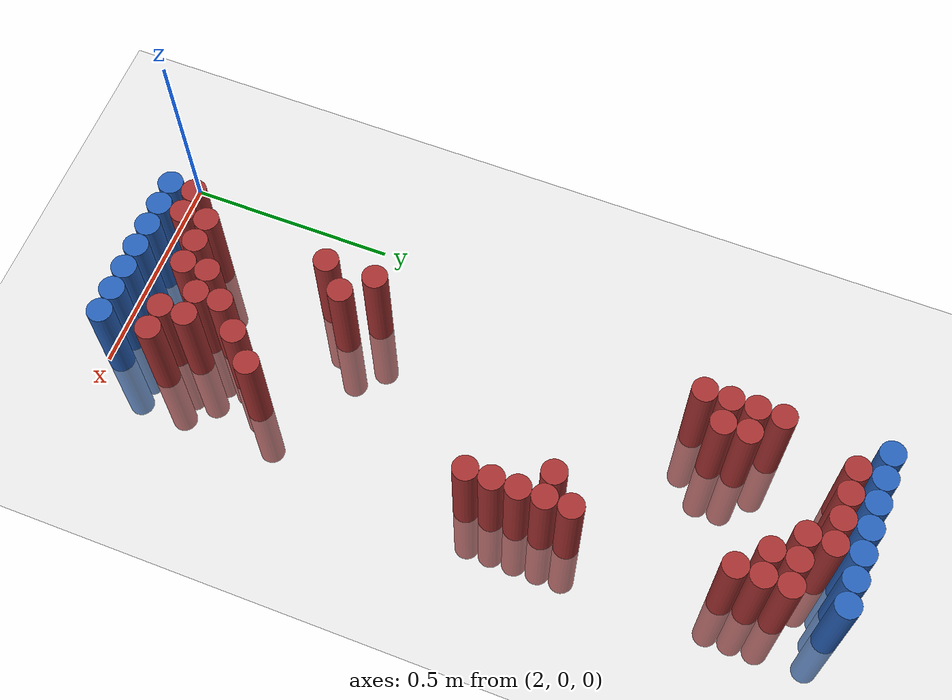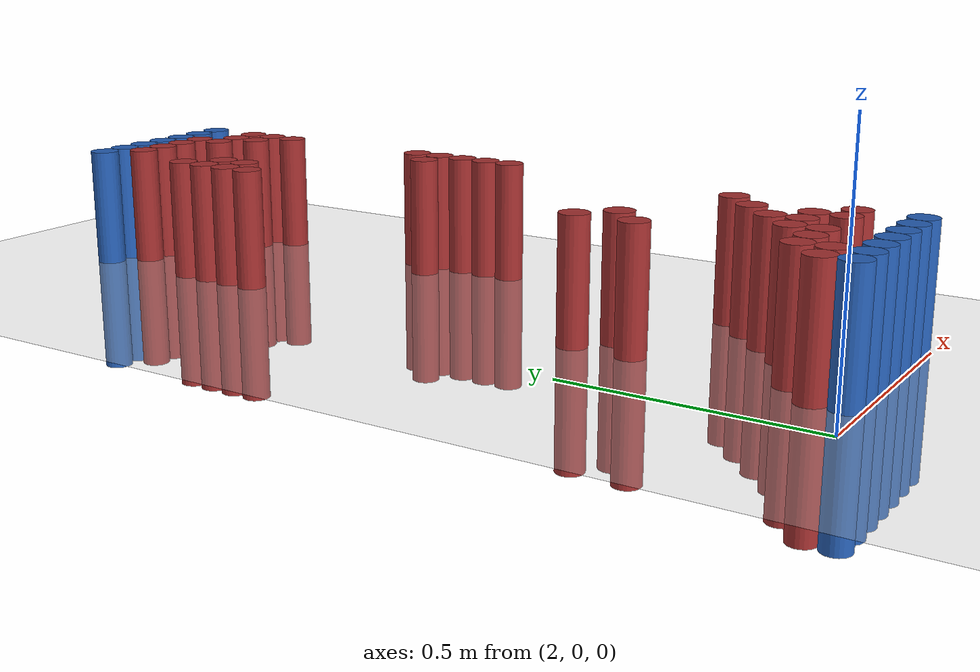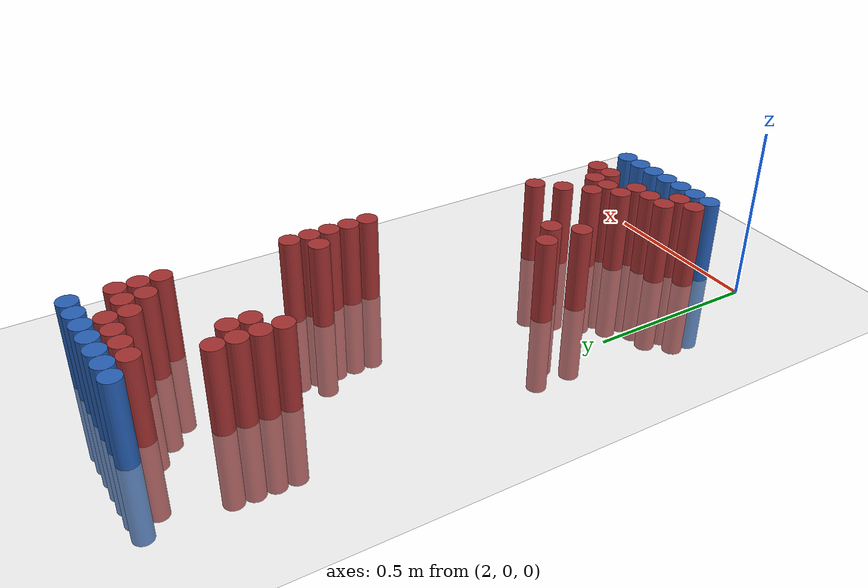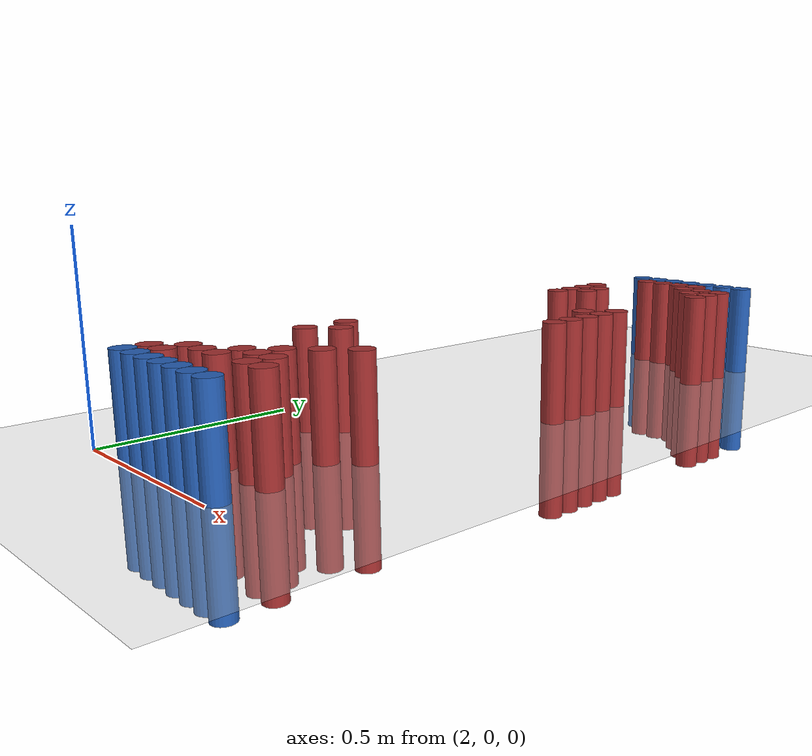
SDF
<sdf version="1.6">
 <world name="default">
  <model name="ground_plane">
   <static>1</static>
   <link name="link">
    <collision name="collision">
     <geometry><plane><normal>0 0 1</normal><size>100 100</size></plane></geometry>
     <surface><friction><ode><mu>100</mu><mu2>50</mu2></ode></friction></surface>
    </collision>
    <visual name="visual">
     <cast_shadows>0</cast_shadows>
     <geometry><plane><normal>0 0 1</normal><size>100 100</size></plane></geometry>
     <material>
      <script><uri>file://media/materials/scripts/gazebo.material</uri><name>Gazebo/Grey</name></script>
     </material>
    </visual>
   </link>
  </model>
  <model name="unit_cylinder_97">
   <static>1</static>
   <pose>2.190000 1.770000 0.000000 0.000000 0.000000 0.000000</pose>
   <link name="link">
    <inertial>
     <mass>1</mass>
     <inertia><ixx>0.145833</ixx><ixy>0</ixy><ixz>0</ixz><iyy>0.145833</iyy><iyz>0</iyz><izz>0.125</izz></inertia>
    </inertial>
    <collision name="collision">
     <geometry><cylinder><radius>0.030000</radius><length>0.5</length></cylinder></geometry>
    </collision>
    <visual name="visual">
     <geometry><cylinder><radius>0.030000</radius><length>0.5</length></cylinder></geometry>
     <material>
      <ambient>0.152000 0.379000 0.720000 1</ambient>
      <diffuse>0.152000 0.379000 0.720000 1</diffuse>
     </material>
     <material>
      <script><name>Gazebo/Grey</name><uri>file://media/materials/scripts/gazebo.material</uri></script>
     </material>
    </visual>
   </link>
  </model>
  <model name="unit_cylinder_98">
   <static>1</static>
   <pose>2.250000 1.770000 0.000000 0.000000 0.000000 0.000000</pose>
   <link name="link">
    <inertial>
     <mass>1</mass>
     <inertia><ixx>0.145833</ixx><ixy>0</ixy><ixz>0</ixz><iyy>0.145833</iyy><iyz>0</iyz><izz>0.125</izz></inertia>
    </inertial>
    <collision name="collision">
     <geometry><cylinder><radius>0.030000</radius><length>0.5</length></cylinder></geometry>
    </collision>
    <visual name="visual">
     <geometry><cylinder><radius>0.030000</radius><length>0.5</length></cylinder></geometry>
     <material>
      <ambient>0.152000 0.379000 0.720000 1</ambient>
      <diffuse>0.152000 0.379000 0.720000 1</diffuse>
     </material>
     <material>
      <script><name>Gazebo/Grey</name><uri>file://media/materials/scripts/gazebo.material</uri></script>
     </material>
    </visual>
   </link>
  </model>
  <model name="unit_cylinder_99">
   <static>1</static>
   <pose>2.310000 1.770000 0.000000 0.000000 0.000000 0.000000</pose>
   <link name="link">
    <inertial>
     <mass>1</mass>
     <inertia><ixx>0.145833</ixx><ixy>0</ixy><ixz>0</ixz><iyy>0.145833</iyy><iyz>0</iyz><izz>0.125</izz></inertia>
    </inertial>
    <collision name="collision">
     <geometry><cylinder><radius>0.030000</radius><length>0.5</length></cylinder></geometry>
    </collision>
    <visual name="visual">
     <geometry><cylinder><radius>0.030000</radius><length>0.5</length></cylinder></geometry>
     <material>
      <ambient>0.152000 0.379000 0.720000 1</ambient>
      <diffuse>0.152000 0.379000 0.720000 1</diffuse>
     </material>
     <material>
      <script><name>Gazebo/Grey</name><uri>file://media/materials/scripts/gazebo.material</uri></script>
     </material>
    </visual>
   </link>
  </model>
  <model name="unit_cylinder_100">
   <static>1</static>
   <pose>2.370000 1.770000 0.000000 0.000000 0.000000 0.000000</pose>
   <link name="link">
    <inertial>
     <mass>1</mass>
     <inertia><ixx>0.145833</ixx><ixy>0</ixy><ixz>0</ixz><iyy>0.145833</iyy><iyz>0</iyz><izz>0.125</izz></inertia>
    </inertial>
    <collision name="collision">
     <geometry><cylinder><radius>0.030000</radius><length>0.5</length></cylinder></geometry>
    </collision>
    <visual name="visual">
     <geometry><cylinder><radius>0.030000</radius><length>0.5</length></cylinder></geometry>
     <material>
      <ambient>0.152000 0.379000 0.720000 1</ambient>
      <diffuse>0.152000 0.379000 0.720000 1</diffuse>
     </material>
     <material>
      <script><name>Gazebo/Grey</name><uri>file://media/materials/scripts/gazebo.material</uri></script>
     </material>
    </visual>
   </link>
  </model>
  <model name="unit_cylinder_101">
   <static>1</static>
   <pose>2.430000 1.770000 0.000000 0.000000 0.000000 0.000000</pose>
   <link name="link">
    <inertial>
     <mass>1</mass>
     <inertia><ixx>0.145833</ixx><ixy>0</ixy><ixz>0</ixz><iyy>0.145833</iyy><iyz>0</iyz><izz>0.125</izz></inertia>
    </inertial>
    <collision name="collision">
     <geometry><cylinder><radius>0.030000</radius><length>0.5</length></cylinder></geometry>
    </collision>
    <visual name="visual">
     <geometry><cylinder><radius>0.030000</radius><length>0.5</length></cylinder></geometry>
     <material>
      <ambient>0.152000 0.379000 0.720000 1</ambient>
      <diffuse>0.152000 0.379000 0.720000 1</diffuse>
     </material>
     <material>
      <script><name>Gazebo/Grey</name><uri>file://media/materials/scripts/gazebo.material</uri></script>
     </material>
    </visual>
   </link>
  </model>
  <model name="unit_cylinder_102">
   <static>1</static>
   <pose>2.490000 1.770000 0.000000 0.000000 0.000000 0.000000</pose>
   <link name="link">
    <inertial>
     <mass>1</mass>
     <inertia><ixx>0.145833</ixx><ixy>0</ixy><ixz>0</ixz><iyy>0.145833</iyy><iyz>0</iyz><izz>0.125</izz></inertia>
    </inertial>
    <collision name="collision">
     <geometry><cylinder><radius>0.030000</radius><length>0.5</length></cylinder></geometry>
    </collision>
    <visual name="visual">
     <geometry><cylinder><radius>0.030000</radius><length>0.5</length></cylinder></geometry>
     <material>
      <ambient>0.152000 0.379000 0.720000 1</ambient>
      <diffuse>0.152000 0.379000 0.720000 1</diffuse>
     </material>
     <material>
      <script><name>Gazebo/Grey</name><uri>file://media/materials/scripts/gazebo.material</uri></script>
     </material>
    </visual>
   </link>
  </model>
  <model name="unit_cylinder_103">
   <static>1</static>
   <pose>2.550000 1.770000 0.000000 0.000000 0.000000 0.000000</pose>
   <link name="link">
    <inertial>
     <mass>1</mass>
     <inertia><ixx>0.145833</ixx><ixy>0</ixy><ixz>0</ixz><iyy>0.145833</iyy><iyz>0</iyz><izz>0.125</izz></inertia>
    </inertial>
    <collision name="collision">
     <geometry><cylinder><radius>0.030000</radius><length>0.5</length></cylinder></geometry>
    </collision>
    <visual name="visual">
     <geometry><cylinder><radius>0.030000</radius><length>0.5</length></cylinder></geometry>
     <material>
      <ambient>0.152000 0.379000 0.720000 1</ambient>
      <diffuse>0.152000 0.379000 0.720000 1</diffuse>
     </material>
     <material>
      <script><name>Gazebo/Grey</name><uri>file://media/materials/scripts/gazebo.material</uri></script>
     </material>
    </visual>
   </link>
  </model>
  <model name="unit_cylinder_125">
   <static>1</static>
   <pose>2.250000 1.710000 0.000000 0.000000 0.000000 0.000000</pose>
   <link name="link">
    <inertial>
     <mass>1</mass>
     <inertia><ixx>0.145833</ixx><ixy>0</ixy><ixz>0</ixz><iyy>0.145833</iyy><iyz>0</iyz><izz>0.125</izz></inertia>
    </inertial>
    <collision name="collision">
     <geometry><cylinder><radius>0.030000</radius><length>0.5</length></cylinder></geometry>
    </collision>
    <visual name="visual">
     <geometry><cylinder><radius>0.030000</radius><length>0.5</length></cylinder></geometry>
     <material>
      <ambient>0.648000 0.192000 0.192000 1</ambient>
      <diffuse>0.648000 0.192000 0.192000 1</diffuse>
     </material>
     <material>
      <script><name>Gazebo/Grey</name><uri>file://media/materials/scripts/gazebo.material</uri></script>
     </material>
    </visual>
   </link>
  </model>
  <model name="unit_cylinder_126">
   <static>1</static>
   <pose>2.310000 1.710000 0.000000 0.000000 0.000000 0.000000</pose>
   <link name="link">
    <inertial>
     <mass>1</mass>
     <inertia><ixx>0.145833</ixx><ixy>0</ixy><ixz>0</ixz><iyy>0.145833</iyy><iyz>0</iyz><izz>0.125</izz></inertia>
    </inertial>
    <collision name="collision">
     <geometry><cylinder><radius>0.030000</radius><length>0.5</length></cylinder></geometry>
    </collision>
    <visual name="visual">
     <geometry><cylinder><radius>0.030000</radius><length>0.5</length></cylinder></geometry>
     <material>
      <ambient>0.648000 0.192000 0.192000 1</ambient>
      <diffuse>0.648000 0.192000 0.192000 1</diffuse>
     </material>
     <material>
      <script><name>Gazebo/Grey</name><uri>file://media/materials/scripts/gazebo.material</uri></script>
     </material>
    </visual>
   </link>
  </model>
  <model name="unit_cylinder_127">
   <static>1</static>
   <pose>2.370000 1.710000 0.000000 0.000000 0.000000 0.000000</pose>
   <link name="link">
    <inertial>
     <mass>1</mass>
     <inertia><ixx>0.145833</ixx><ixy>0</ixy><ixz>0</ixz><iyy>0.145833</iyy><iyz>0</iyz><izz>0.125</izz></inertia>
    </inertial>
    <collision name="collision">
     <geometry><cylinder><radius>0.030000</radius><length>0.5</length></cylinder></geometry>
    </collision>
    <visual name="visual">
     <geometry><cylinder><radius>0.030000</radius><length>0.5</length></cylinder></geometry>
     <material>
      <ambient>0.648000 0.192000 0.192000 1</ambient>
      <diffuse>0.648000 0.192000 0.192000 1</diffuse>
     </material>
     <material>
      <script><name>Gazebo/Grey</name><uri>file://media/materials/scripts/gazebo.material</uri></script>
     </material>
    </visual>
   </link>
  </model>
  <model name="unit_cylinder_128">
   <static>1</static>
   <pose>2.430000 1.710000 0.000000 0.000000 0.000000 0.000000</pose>
   <link name="link">
    <inertial>
     <mass>1</mass>
     <inertia><ixx>0.145833</ixx><ixy>0</ixy><ixz>0</ixz><iyy>0.145833</iyy><iyz>0</iyz><izz>0.125</izz></inertia>
    </inertial>
    <collision name="collision">
     <geometry><cylinder><radius>0.030000</radius><length>0.5</length></cylinder></geometry>
    </collision>
    <visual name="visual">
     <geometry><cylinder><radius>0.030000</radius><length>0.5</length></cylinder></geometry>
     <material>
      <ambient>0.648000 0.192000 0.192000 1</ambient>
      <diffuse>0.648000 0.192000 0.192000 1</diffuse>
     </material>
     <material>
      <script><name>Gazebo/Grey</name><uri>file://media/materials/scripts/gazebo.material</uri></script>
     </material>
    </visual>
   </link>
  </model>
  <model name="unit_cylinder_138">
   <static>1</static>
   <pose>2.430000 1.650000 0.000000 0.000000 0.000000 0.000000</pose>
   <link name="link">
    <inertial>
     <mass>1</mass>
     <inertia><ixx>0.145833</ixx><ixy>0</ixy><ixz>0</ixz><iyy>0.145833</iyy><iyz>0</iyz><izz>0.125</izz></inertia>
    </inertial>
    <collision name="collision">
     <geometry><cylinder><radius>0.030000</radius><length>0.5</length></cylinder></geometry>
    </collision>
    <visual name="visual">
     <geometry><cylinder><radius>0.030000</radius><length>0.5</length></cylinder></geometry>
     <material>
      <ambient>0.648000 0.192000 0.192000 1</ambient>
      <diffuse>0.648000 0.192000 0.192000 1</diffuse>
     </material>
     <material>
      <script><name>Gazebo/Grey</name><uri>file://media/materials/scripts/gazebo.material</uri></script>
     </material>
    </visual>
   </link>
  </model>
  <model name="unit_cylinder_139">
   <static>1</static>
   <pose>2.490000 1.650000 0.000000 0.000000 0.000000 0.000000</pose>
   <link name="link">
    <inertial>
     <mass>1</mass>
     <inertia><ixx>0.145833</ixx><ixy>0</ixy><ixz>0</ixz><iyy>0.145833</iyy><iyz>0</iyz><izz>0.125</izz></inertia>
    </inertial>
    <collision name="collision">
     <geometry><cylinder><radius>0.030000</radius><length>0.5</length></cylinder></geometry>
    </collision>
    <visual name="visual">
     <geometry><cylinder><radius>0.030000</radius><length>0.5</length></cylinder></geometry>
     <material>
      <ambient>0.648000 0.192000 0.192000 1</ambient>
      <diffuse>0.648000 0.192000 0.192000 1</diffuse>
     </material>
     <material>
      <script><name>Gazebo/Grey</name><uri>file://media/materials/scripts/gazebo.material</uri></script>
     </material>
    </visual>
   </link>
  </model>
  <model name="unit_cylinder_140">
   <static>1</static>
   <pose>2.550000 1.650000 0.000000 0.000000 0.000000 0.000000</pose>
   <link name="link">
    <inertial>
     <mass>1</mass>
     <inertia><ixx>0.145833</ixx><ixy>0</ixy><ixz>0</ixz><iyy>0.145833</iyy><iyz>0</iyz><izz>0.125</izz></inertia>
    </inertial>
    <collision name="collision">
     <geometry><cylinder><radius>0.030000</radius><length>0.5</length></cylinder></geometry>
    </collision>
    <visual name="visual">
     <geometry><cylinder><radius>0.030000</radius><length>0.5</length></cylinder></geometry>
     <material>
      <ambient>0.648000 0.192000 0.192000 1</ambient>
      <diffuse>0.648000 0.192000 0.192000 1</diffuse>
     </material>
     <material>
      <script><name>Gazebo/Grey</name><uri>file://media/materials/scripts/gazebo.material</uri></script>
     </material>
    </visual>
   </link>
  </model>
  <model name="unit_cylinder_145">
   <static>1</static>
   <pose>2.490000 1.590000 0.000000 0.000000 0.000000 0.000000</pose>
   <link name="link">
    <inertial>
     <mass>1</mass>
     <inertia><ixx>0.145833</ixx><ixy>0</ixy><ixz>0</ixz><iyy>0.145833</iyy><iyz>0</iyz><izz>0.125</izz></inertia>
    </inertial>
    <collision name="collision">
     <geometry><cylinder><radius>0.030000</radius><length>0.5</length></cylinder></geometry>
    </collision>
    <visual name="visual">
     <geometry><cylinder><radius>0.030000</radius><length>0.5</length></cylinder></geometry>
     <material>
      <ambient>0.648000 0.192000 0.192000 1</ambient>
      <diffuse>0.648000 0.192000 0.192000 1</diffuse>
     </material>
     <material>
      <script><name>Gazebo/Grey</name><uri>file://media/materials/scripts/gazebo.material</uri></script>
     </material>
    </visual>
   </link>
  </model>
  <model name="unit_cylinder_146">
   <static>1</static>
   <pose>2.550000 1.590000 0.000000 0.000000 0.000000 0.000000</pose>
   <link name="link">
    <inertial>
     <mass>1</mass>
     <inertia><ixx>0.145833</ixx><ixy>0</ixy><ixz>0</ixz><iyy>0.145833</iyy><iyz>0</iyz><izz>0.125</izz></inertia>
    </inertial>
    <collision name="collision">
     <geometry><cylinder><radius>0.030000</radius><length>0.5</length></cylinder></geometry>
    </collision>
    <visual name="visual">
     <geometry><cylinder><radius>0.030000</radius><length>0.5</length></cylinder></geometry>
     <material>
      <ambient>0.648000 0.192000 0.192000 1</ambient>
      <diffuse>0.648000 0.192000 0.192000 1</diffuse>
     </material>
     <material>
      <script><name>Gazebo/Grey</name><uri>file://media/materials/scripts/gazebo.material</uri></script>
     </material>
    </visual>
   </link>
  </model>
  <model name="unit_cylinder_151">
   <static>1</static>
   <pose>2.190000 1.530000 0.000000 0.000000 0.000000 0.000000</pose>
   <link name="link">
    <inertial>
     <mass>1</mass>
     <inertia><ixx>0.145833</ixx><ixy>0</ixy><ixz>0</ixz><iyy>0.145833</iyy><iyz>0</iyz><izz>0.125</izz></inertia>
    </inertial>
    <collision name="collision">
     <geometry><cylinder><radius>0.030000</radius><length>0.5</length></cylinder></geometry>
    </collision>
    <visual name="visual">
     <geometry><cylinder><radius>0.030000</radius><length>0.5</length></cylinder></geometry>
     <material>
      <ambient>0.648000 0.192000 0.192000 1</ambient>
      <diffuse>0.648000 0.192000 0.192000 1</diffuse>
     </material>
     <material>
      <script><name>Gazebo/Grey</name><uri>file://media/materials/scripts/gazebo.material</uri></script>
     </material>
    </visual>
   </link>
  </model>
  <model name="unit_cylinder_152">
   <static>1</static>
   <pose>2.550000 1.530000 0.000000 0.000000 0.000000 0.000000</pose>
   <link name="link">
    <inertial>
     <mass>1</mass>
     <inertia><ixx>0.145833</ixx><ixy>0</ixy><ixz>0</ixz><iyy>0.145833</iyy><iyz>0</iyz><izz>0.125</izz></inertia>
    </inertial>
    <collision name="collision">
     <geometry><cylinder><radius>0.030000</radius><length>0.5</length></cylinder></geometry>
    </collision>
    <visual name="visual">
     <geometry><cylinder><radius>0.030000</radius><length>0.5</length></cylinder></geometry>
     <material>
      <ambient>0.648000 0.192000 0.192000 1</ambient>
      <diffuse>0.648000 0.192000 0.192000 1</diffuse>
     </material>
     <material>
      <script><name>Gazebo/Grey</name><uri>file://media/materials/scripts/gazebo.material</uri></script>
     </material>
    </visual>
   </link>
  </model>
  <model name="unit_cylinder_159">
   <static>1</static>
   <pose>2.190000 1.470000 0.000000 0.000000 0.000000 0.000000</pose>
   <link name="link">
    <inertial>
     <mass>1</mass>
     <inertia><ixx>0.145833</ixx><ixy>0</ixy><ixz>0</ixz><iyy>0.145833</iyy><iyz>0</iyz><izz>0.125</izz></inertia>
    </inertial>
    <collision name="collision">
     <geometry><cylinder><radius>0.030000</radius><length>0.5</length></cylinder></geometry>
    </collision>
    <visual name="visual">
     <geometry><cylinder><radius>0.030000</radius><length>0.5</length></cylinder></geometry>
     <material>
      <ambient>0.648000 0.192000 0.192000 1</ambient>
      <diffuse>0.648000 0.192000 0.192000 1</diffuse>
     </material>
     <material>
      <script><name>Gazebo/Grey</name><uri>file://media/materials/scripts/gazebo.material</uri></script>
     </material>
    </visual>
   </link>
  </model>
  <model name="unit_cylinder_160">
   <static>1</static>
   <pose>2.250000 1.470000 0.000000 0.000000 0.000000 0.000000</pose>
   <link name="link">
    <inertial>
     <mass>1</mass>
     <inertia><ixx>0.145833</ixx><ixy>0</ixy><ixz>0</ixz><iyy>0.145833</iyy><iyz>0</iyz><izz>0.125</izz></inertia>
    </inertial>
    <collision name="collision">
     <geometry><cylinder><radius>0.030000</radius><length>0.5</length></cylinder></geometry>
    </collision>
    <visual name="visual">
     <geometry><cylinder><radius>0.030000</radius><length>0.5</length></cylinder></geometry>
     <material>
      <ambient>0.648000 0.192000 0.192000 1</ambient>
      <diffuse>0.648000 0.192000 0.192000 1</diffuse>
     </material>
     <material>
      <script><name>Gazebo/Grey</name><uri>file://media/materials/scripts/gazebo.material</uri></script>
     </material>
    </visual>
   </link>
  </model>
  <model name="unit_cylinder_167">
   <static>1</static>
   <pose>2.190000 1.410000 0.000000 0.000000 0.000000 0.000000</pose>
   <link name="link">
    <inertial>
     <mass>1</mass>
     <inertia><ixx>0.145833</ixx><ixy>0</ixy><ixz>0</ixz><iyy>0.145833</iyy><iyz>0</iyz><izz>0.125</izz></inertia>
    </inertial>
    <collision name="collision">
     <geometry><cylinder><radius>0.030000</radius><length>0.5</length></cylinder></geometry>
    </collision>
    <visual name="visual">
     <geometry><cylinder><radius>0.030000</radius><length>0.5</length></cylinder></geometry>
     <material>
      <ambient>0.648000 0.192000 0.192000 1</ambient>
      <diffuse>0.648000 0.192000 0.192000 1</diffuse>
     </material>
     <material>
      <script><name>Gazebo/Grey</name><uri>file://media/materials/scripts/gazebo.material</uri></script>
     </material>
    </visual>
   </link>
  </model>
  <model name="unit_cylinder_168">
   <static>1</static>
   <pose>2.250000 1.410000 0.000000 0.000000 0.000000 0.000000</pose>
   <link name="link">
    <inertial>
     <mass>1</mass>
     <inertia><ixx>0.145833</ixx><ixy>0</ixy><ixz>0</ixz><iyy>0.145833</iyy><iyz>0</iyz><izz>0.125</izz></inertia>
    </inertial>
    <collision name="collision">
     <geometry><cylinder><radius>0.030000</radius><length>0.5</length></cylinder></geometry>
    </collision>
    <visual name="visual">
     <geometry><cylinder><radius>0.030000</radius><length>0.5</length></cylinder></geometry>
     <material>
      <ambient>0.648000 0.192000 0.192000 1</ambient>
      <diffuse>0.648000 0.192000 0.192000 1</diffuse>
     </material>
     <material>
      <script><name>Gazebo/Grey</name><uri>file://media/materials/scripts/gazebo.material</uri></script>
     </material>
    </visual>
   </link>
  </model>
  <model name="unit_cylinder_177">
   <static>1</static>
   <pose>2.190000 1.350000 0.000000 0.000000 0.000000 0.000000</pose>
   <link name="link">
    <inertial>
     <mass>1</mass>
     <inertia><ixx>0.145833</ixx><ixy>0</ixy><ixz>0</ixz><iyy>0.145833</iyy><iyz>0</iyz><izz>0.125</izz></inertia>
    </inertial>
    <collision name="collision">
     <geometry><cylinder><radius>0.030000</radius><length>0.5</length></cylinder></geometry>
    </collision>
    <visual name="visual">
     <geometry><cylinder><radius>0.030000</radius><length>0.5</length></cylinder></geometry>
     <material>
      <ambient>0.648000 0.192000 0.192000 1</ambient>
      <diffuse>0.648000 0.192000 0.192000 1</diffuse>
     </material>
     <material>
      <script><name>Gazebo/Grey</name><uri>file://media/materials/scripts/gazebo.material</uri></script>
     </material>
    </visual>
   </link>
  </model>
  <model name="unit_cylinder_199">
   <static>1</static>
   <pose>2.550000 1.170000 0.000000 0.000000 0.000000 0.000000</pose>
   <link name="link">
    <inertial>
     <mass>1</mass>
     <inertia><ixx>0.145833</ixx><ixy>0</ixy><ixz>0</ixz><iyy>0.145833</iyy><iyz>0</iyz><izz>0.125</izz></inertia>
    </inertial>
    <collision name="collision">
     <geometry><cylinder><radius>0.030000</radius><length>0.5</length></cylinder></geometry>
    </collision>
    <visual name="visual">
     <geometry><cylinder><radius>0.030000</radius><length>0.5</length></cylinder></geometry>
     <material>
      <ambient>0.648000 0.192000 0.192000 1</ambient>
      <diffuse>0.648000 0.192000 0.192000 1</diffuse>
     </material>
     <material>
      <script><name>Gazebo/Grey</name><uri>file://media/materials/scripts/gazebo.material</uri></script>
     </material>
    </visual>
   </link>
  </model>
  <model name="unit_cylinder_206">
   <static>1</static>
   <pose>2.490000 1.110000 0.000000 0.000000 0.000000 0.000000</pose>
   <link name="link">
    <inertial>
     <mass>1</mass>
     <inertia><ixx>0.145833</ixx><ixy>0</ixy><ixz>0</ixz><iyy>0.145833</iyy><iyz>0</iyz><izz>0.125</izz></inertia>
    </inertial>
    <collision name="collision">
     <geometry><cylinder><radius>0.030000</radius><length>0.5</length></cylinder></geometry>
    </collision>
    <visual name="visual">
     <geometry><cylinder><radius>0.030000</radius><length>0.5</length></cylinder></geometry>
     <material>
      <ambient>0.648000 0.192000 0.192000 1</ambient>
      <diffuse>0.648000 0.192000 0.192000 1</diffuse>
     </material>
     <material>
      <script><name>Gazebo/Grey</name><uri>file://media/materials/scripts/gazebo.material</uri></script>
     </material>
    </visual>
   </link>
  </model>
  <model name="unit_cylinder_207">
   <static>1</static>
   <pose>2.550000 1.110000 0.000000 0.000000 0.000000 0.000000</pose>
   <link name="link">
    <inertial>
     <mass>1</mass>
     <inertia><ixx>0.145833</ixx><ixy>0</ixy><ixz>0</ixz><iyy>0.145833</iyy><iyz>0</iyz><izz>0.125</izz></inertia>
    </inertial>
    <collision name="collision">
     <geometry><cylinder><radius>0.030000</radius><length>0.5</length></cylinder></geometry>
    </collision>
    <visual name="visual">
     <geometry><cylinder><radius>0.030000</radius><length>0.5</length></cylinder></geometry>
     <material>
      <ambient>0.648000 0.192000 0.192000 1</ambient>
      <diffuse>0.648000 0.192000 0.192000 1</diffuse>
     </material>
     <material>
      <script><name>Gazebo/Grey</name><uri>file://media/materials/scripts/gazebo.material</uri></script>
     </material>
    </visual>
   </link>
  </model>
  <model name="unit_cylinder_210">
   <static>1</static>
   <pose>2.550000 1.050000 0.000000 0.000000 0.000000 0.000000</pose>
   <link name="link">
    <inertial>
     <mass>1</mass>
     <inertia><ixx>0.145833</ixx><ixy>0</ixy><ixz>0</ixz><iyy>0.145833</iyy><iyz>0</iyz><izz>0.125</izz></inertia>
    </inertial>
    <collision name="collision">
     <geometry><cylinder><radius>0.030000</radius><length>0.5</length></cylinder></geometry>
    </collision>
    <visual name="visual">
     <geometry><cylinder><radius>0.030000</radius><length>0.5</length></cylinder></geometry>
     <material>
      <ambient>0.648000 0.192000 0.192000 1</ambient>
      <diffuse>0.648000 0.192000 0.192000 1</diffuse>
     </material>
     <material>
      <script><name>Gazebo/Grey</name><uri>file://media/materials/scripts/gazebo.material</uri></script>
     </material>
    </visual>
   </link>
  </model>
  <model name="unit_cylinder_213">
   <static>1</static>
   <pose>2.550000 0.990000 0.000000 0.000000 0.000000 0.000000</pose>
   <link name="link">
    <inertial>
     <mass>1</mass>
     <inertia><ixx>0.145833</ixx><ixy>0</ixy><ixz>0</ixz><iyy>0.145833</iyy><iyz>0</iyz><izz>0.125</izz></inertia>
    </inertial>
    <collision name="collision">
     <geometry><cylinder><radius>0.030000</radius><length>0.5</length></cylinder></geometry>
    </collision>
    <visual name="visual">
     <geometry><cylinder><radius>0.030000</radius><length>0.5</length></cylinder></geometry>
     <material>
      <ambient>0.648000 0.192000 0.192000 1</ambient>
      <diffuse>0.648000 0.192000 0.192000 1</diffuse>
     </material>
     <material>
      <script><name>Gazebo/Grey</name><uri>file://media/materials/scripts/gazebo.material</uri></script>
     </material>
    </visual>
   </link>
  </model>
  <model name="unit_cylinder_217">
   <static>1</static>
   <pose>2.550000 0.930000 0.000000 0.000000 0.000000 0.000000</pose>
   <link name="link">
    <inertial>
     <mass>1</mass>
     <inertia><ixx>0.145833</ixx><ixy>0</ixy><ixz>0</ixz><iyy>0.145833</iyy><iyz>0</iyz><izz>0.125</izz></inertia>
    </inertial>
    <collision name="collision">
     <geometry><cylinder><radius>0.030000</radius><length>0.5</length></cylinder></geometry>
    </collision>
    <visual name="visual">
     <geometry><cylinder><radius>0.030000</radius><length>0.5</length></cylinder></geometry>
     <material>
      <ambient>0.648000 0.192000 0.192000 1</ambient>
      <diffuse>0.648000 0.192000 0.192000 1</diffuse>
     </material>
     <material>
      <script><name>Gazebo/Grey</name><uri>file://media/materials/scripts/gazebo.material</uri></script>
     </material>
    </visual>
   </link>
  </model>
  <model name="unit_cylinder_224">
   <static>1</static>
   <pose>2.190000 0.570000 0.000000 0.000000 0.000000 0.000000</pose>
   <link name="link">
    <inertial>
     <mass>1</mass>
     <inertia><ixx>0.145833</ixx><ixy>0</ixy><ixz>0</ixz><iyy>0.145833</iyy><iyz>0</iyz><izz>0.125</izz></inertia>
    </inertial>
    <collision name="collision">
     <geometry><cylinder><radius>0.030000</radius><length>0.5</length></cylinder></geometry>
    </collision>
    <visual name="visual">
     <geometry><cylinder><radius>0.030000</radius><length>0.5</length></cylinder></geometry>
     <material>
      <ambient>0.648000 0.192000 0.192000 1</ambient>
      <diffuse>0.648000 0.192000 0.192000 1</diffuse>
     </material>
     <material>
      <script><name>Gazebo/Grey</name><uri>file://media/materials/scripts/gazebo.material</uri></script>
     </material>
    </visual>
   </link>
  </model>
  <model name="unit_cylinder_227">
   <static>1</static>
   <pose>2.250000 0.510000 0.000000 0.000000 0.000000 0.000000</pose>
   <link name="link">
    <inertial>
     <mass>1</mass>
     <inertia><ixx>0.145833</ixx><ixy>0</ixy><ixz>0</ixz><iyy>0.145833</iyy><iyz>0</iyz><izz>0.125</izz></inertia>
    </inertial>
    <collision name="collision">
     <geometry><cylinder><radius>0.030000</radius><length>0.5</length></cylinder></geometry>
    </collision>
    <visual name="visual">
     <geometry><cylinder><radius>0.030000</radius><length>0.5</length></cylinder></geometry>
     <material>
      <ambient>0.648000 0.192000 0.192000 1</ambient>
      <diffuse>0.648000 0.192000 0.192000 1</diffuse>
     </material>
     <material>
      <script><name>Gazebo/Grey</name><uri>file://media/materials/scripts/gazebo.material</uri></script>
     </material>
    </visual>
   </link>
  </model>
  <model name="unit_cylinder_230">
   <static>1</static>
   <pose>2.190000 0.450000 0.000000 0.000000 0.000000 0.000000</pose>
   <link name="link">
    <inertial>
     <mass>1</mass>
     <inertia><ixx>0.145833</ixx><ixy>0</ixy><ixz>0</ixz><iyy>0.145833</iyy><iyz>0</iyz><izz>0.125</izz></inertia>
    </inertial>
    <collision name="collision">
     <geometry><cylinder><radius>0.030000</radius><length>0.5</length></cylinder></geometry>
    </collision>
    <visual name="visual">
     <geometry><cylinder><radius>0.030000</radius><length>0.5</length></cylinder></geometry>
     <material>
      <ambient>0.648000 0.192000 0.192000 1</ambient>
      <diffuse>0.648000 0.192000 0.192000 1</diffuse>
     </material>
     <material>
      <script><name>Gazebo/Grey</name><uri>file://media/materials/scripts/gazebo.material</uri></script>
     </material>
    </visual>
   </link>
  </model>
  <model name="unit_cylinder_231">
   <static>1</static>
   <pose>2.490000 0.390000 0.000000 0.000000 0.000000 0.000000</pose>
   <link name="link">
    <inertial>
     <mass>1</mass>
     <inertia><ixx>0.145833</ixx><ixy>0</ixy><ixz>0</ixz><iyy>0.145833</iyy><iyz>0</iyz><izz>0.125</izz></inertia>
    </inertial>
    <collision name="collision">
     <geometry><cylinder><radius>0.030000</radius><length>0.5</length></cylinder></geometry>
    </collision>
    <visual name="visual">
     <geometry><cylinder><radius>0.030000</radius><length>0.5</length></cylinder></geometry>
     <material>
      <ambient>0.648000 0.192000 0.192000 1</ambient>
      <diffuse>0.648000 0.192000 0.192000 1</diffuse>
     </material>
     <material>
      <script><name>Gazebo/Grey</name><uri>file://media/materials/scripts/gazebo.material</uri></script>
     </material>
    </visual>
   </link>
  </model>
  <model name="unit_cylinder_233">
   <static>1</static>
   <pose>2.430000 0.330000 0.000000 0.000000 0.000000 0.000000</pose>
   <link name="link">
    <inertial>
     <mass>1</mass>
     <inertia><ixx>0.145833</ixx><ixy>0</ixy><ixz>0</ixz><iyy>0.145833</iyy><iyz>0</iyz><izz>0.125</izz></inertia>
    </inertial>
    <collision name="collision">
     <geometry><cylinder><radius>0.030000</radius><length>0.5</length></cylinder></geometry>
    </collision>
    <visual name="visual">
     <geometry><cylinder><radius>0.030000</radius><length>0.5</length></cylinder></geometry>
     <material>
      <ambient>0.648000 0.192000 0.192000 1</ambient>
      <diffuse>0.648000 0.192000 0.192000 1</diffuse>
     </material>
     <material>
      <script><name>Gazebo/Grey</name><uri>file://media/materials/scripts/gazebo.material</uri></script>
     </material>
    </visual>
   </link>
  </model>
  <model name="unit_cylinder_238">
   <static>1</static>
   <pose>2.370000 0.270000 0.000000 0.000000 0.000000 0.000000</pose>
   <link name="link">
    <inertial>
     <mass>1</mass>
     <inertia><ixx>0.145833</ixx><ixy>0</ixy><ixz>0</ixz><iyy>0.145833</iyy><iyz>0</iyz><izz>0.125</izz></inertia>
    </inertial>
    <collision name="collision">
     <geometry><cylinder><radius>0.030000</radius><length>0.5</length></cylinder></geometry>
    </collision>
    <visual name="visual">
     <geometry><cylinder><radius>0.030000</radius><length>0.5</length></cylinder></geometry>
     <material>
      <ambient>0.648000 0.192000 0.192000 1</ambient>
      <diffuse>0.648000 0.192000 0.192000 1</diffuse>
     </material>
     <material>
      <script><name>Gazebo/Grey</name><uri>file://media/materials/scripts/gazebo.material</uri></script>
     </material>
    </visual>
   </link>
  </model>
  <model name="unit_cylinder_244">
   <static>1</static>
   <pose>2.310000 0.210000 0.000000 0.000000 0.000000 0.000000</pose>
   <link name="link">
    <inertial>
     <mass>1</mass>
     <inertia><ixx>0.145833</ixx><ixy>0</ixy><ixz>0</ixz><iyy>0.145833</iyy><iyz>0</iyz><izz>0.125</izz></inertia>
    </inertial>
    <collision name="collision">
     <geometry><cylinder><radius>0.030000</radius><length>0.5</length></cylinder></geometry>
    </collision>
    <visual name="visual">
     <geometry><cylinder><radius>0.030000</radius><length>0.5</length></cylinder></geometry>
     <material>
      <ambient>0.648000 0.192000 0.192000 1</ambient>
      <diffuse>0.648000 0.192000 0.192000 1</diffuse>
     </material>
     <material>
      <script><name>Gazebo/Grey</name><uri>file://media/materials/scripts/gazebo.material</uri></script>
     </material>
    </visual>
   </link>
  </model>
  <model name="unit_cylinder_245">
   <static>1</static>
   <pose>2.370000 0.210000 0.000000 0.000000 0.000000 0.000000</pose>
   <link name="link">
    <inertial>
     <mass>1</mass>
     <inertia><ixx>0.145833</ixx><ixy>0</ixy><ixz>0</ixz><iyy>0.145833</iyy><iyz>0</iyz><izz>0.125</izz></inertia>
    </inertial>
    <collision name="collision">
     <geometry><cylinder><radius>0.030000</radius><length>0.5</length></cylinder></geometry>
    </collision>
    <visual name="visual">
     <geometry><cylinder><radius>0.030000</radius><length>0.5</length></cylinder></geometry>
     <material>
      <ambient>0.648000 0.192000 0.192000 1</ambient>
      <diffuse>0.648000 0.192000 0.192000 1</diffuse>
     </material>
     <material>
      <script><name>Gazebo/Grey</name><uri>file://media/materials/scripts/gazebo.material</uri></script>
     </material>
    </visual>
   </link>
  </model>
  <model name="unit_cylinder_246">
   <static>1</static>
   <pose>2.430000 0.210000 0.000000 0.000000 0.000000 0.000000</pose>
   <link name="link">
    <inertial>
     <mass>1</mass>
     <inertia><ixx>0.145833</ixx><ixy>0</ixy><ixz>0</ixz><iyy>0.145833</iyy><iyz>0</iyz><izz>0.125</izz></inertia>
    </inertial>
    <collision name="collision">
     <geometry><cylinder><radius>0.030000</radius><length>0.5</length></cylinder></geometry>
    </collision>
    <visual name="visual">
     <geometry><cylinder><radius>0.030000</radius><length>0.5</length></cylinder></geometry>
     <material>
      <ambient>0.648000 0.192000 0.192000 1</ambient>
      <diffuse>0.648000 0.192000 0.192000 1</diffuse>
     </material>
     <material>
      <script><name>Gazebo/Grey</name><uri>file://media/materials/scripts/gazebo.material</uri></script>
     </material>
    </visual>
   </link>
  </model>
  <model name="unit_cylinder_249">
   <static>1</static>
   <pose>2.190000 0.150000 0.000000 0.000000 0.000000 0.000000</pose>
   <link name="link">
    <inertial>
     <mass>1</mass>
     <inertia><ixx>0.145833</ixx><ixy>0</ixy><ixz>0</ixz><iyy>0.145833</iyy><iyz>0</iyz><izz>0.125</izz></inertia>
    </inertial>
    <collision name="collision">
     <geometry><cylinder><radius>0.030000</radius><length>0.5</length></cylinder></geometry>
    </collision>
    <visual name="visual">
     <geometry><cylinder><radius>0.030000</radius><length>0.5</length></cylinder></geometry>
     <material>
      <ambient>0.648000 0.192000 0.192000 1</ambient>
      <diffuse>0.648000 0.192000 0.192000 1</diffuse>
     </material>
     <material>
      <script><name>Gazebo/Grey</name><uri>file://media/materials/scripts/gazebo.material</uri></script>
     </material>
    </visual>
   </link>
  </model>
  <model name="unit_cylinder_250">
   <static>1</static>
   <pose>2.250000 0.150000 0.000000 0.000000 0.000000 0.000000</pose>
   <link name="link">
    <inertial>
     <mass>1</mass>
     <inertia><ixx>0.145833</ixx><ixy>0</ixy><ixz>0</ixz><iyy>0.145833</iyy><iyz>0</iyz><izz>0.125</izz></inertia>
    </inertial>
    <collision name="collision">
     <geometry><cylinder><radius>0.030000</radius><length>0.5</length></cylinder></geometry>
    </collision>
    <visual name="visual">
     <geometry><cylinder><radius>0.030000</radius><length>0.5</length></cylinder></geometry>
     <material>
      <ambient>0.648000 0.192000 0.192000 1</ambient>
      <diffuse>0.648000 0.192000 0.192000 1</diffuse>
     </material>
     <material>
      <script><name>Gazebo/Grey</name><uri>file://media/materials/scripts/gazebo.material</uri></script>
     </material>
    </visual>
   </link>
  </model>
  <model name="unit_cylinder_251">
   <static>1</static>
   <pose>2.310000 0.150000 0.000000 0.000000 0.000000 0.000000</pose>
   <link name="link">
    <inertial>
     <mass>1</mass>
     <inertia><ixx>0.145833</ixx><ixy>0</ixy><ixz>0</ixz><iyy>0.145833</iyy><iyz>0</iyz><izz>0.125</izz></inertia>
    </inertial>
    <collision name="collision">
     <geometry><cylinder><radius>0.030000</radius><length>0.5</length></cylinder></geometry>
    </collision>
    <visual name="visual">
     <geometry><cylinder><radius>0.030000</radius><length>0.5</length></cylinder></geometry>
     <material>
      <ambient>0.648000 0.192000 0.192000 1</ambient>
      <diffuse>0.648000 0.192000 0.192000 1</diffuse>
     </material>
     <material>
      <script><name>Gazebo/Grey</name><uri>file://media/materials/scripts/gazebo.material</uri></script>
     </material>
    </visual>
   </link>
  </model>
  <model name="unit_cylinder_252">
   <static>1</static>
   <pose>2.430000 0.150000 0.000000 0.000000 0.000000 0.000000</pose>
   <link name="link">
    <inertial>
     <mass>1</mass>
     <inertia><ixx>0.145833</ixx><ixy>0</ixy><ixz>0</ixz><iyy>0.145833</iyy><iyz>0</iyz><izz>0.125</izz></inertia>
    </inertial>
    <collision name="collision">
     <geometry><cylinder><radius>0.030000</radius><length>0.5</length></cylinder></geometry>
    </collision>
    <visual name="visual">
     <geometry><cylinder><radius>0.030000</radius><length>0.5</length></cylinder></geometry>
     <material>
      <ambient>0.648000 0.192000 0.192000 1</ambient>
      <diffuse>0.648000 0.192000 0.192000 1</diffuse>
     </material>
     <material>
      <script><name>Gazebo/Grey</name><uri>file://media/materials/scripts/gazebo.material</uri></script>
     </material>
    </visual>
   </link>
  </model>
  <model name="unit_cylinder_253">
   <static>1</static>
   <pose>2.490000 0.150000 0.000000 0.000000 0.000000 0.000000</pose>
   <link name="link">
    <inertial>
     <mass>1</mass>
     <inertia><ixx>0.145833</ixx><ixy>0</ixy><ixz>0</ixz><iyy>0.145833</iyy><iyz>0</iyz><izz>0.125</izz></inertia>
    </inertial>
    <collision name="collision">
     <geometry><cylinder><radius>0.030000</radius><length>0.5</length></cylinder></geometry>
    </collision>
    <visual name="visual">
     <geometry><cylinder><radius>0.030000</radius><length>0.5</length></cylinder></geometry>
     <material>
      <ambient>0.648000 0.192000 0.192000 1</ambient>
      <diffuse>0.648000 0.192000 0.192000 1</diffuse>
     </material>
     <material>
      <script><name>Gazebo/Grey</name><uri>file://media/materials/scripts/gazebo.material</uri></script>
     </material>
    </visual>
   </link>
  </model>
  <model name="unit_cylinder_259">
   <static>1</static>
   <pose>2.130000 0.090000 0.000000 0.000000 0.000000 0.000000</pose>
   <link name="link">
    <inertial>
     <mass>1</mass>
     <inertia><ixx>0.145833</ixx><ixy>0</ixy><ixz>0</ixz><iyy>0.145833</iyy><iyz>0</iyz><izz>0.125</izz></inertia>
    </inertial>
    <collision name="collision">
     <geometry><cylinder><radius>0.030000</radius><length>0.5</length></cylinder></geometry>
    </collision>
    <visual name="visual">
     <geometry><cylinder><radius>0.030000</radius><length>0.5</length></cylinder></geometry>
     <material>
      <ambient>0.648000 0.192000 0.192000 1</ambient>
      <diffuse>0.648000 0.192000 0.192000 1</diffuse>
     </material>
     <material>
      <script><name>Gazebo/Grey</name><uri>file://media/materials/scripts/gazebo.material</uri></script>
     </material>
    </visual>
   </link>
  </model>
  <model name="unit_cylinder_260">
   <static>1</static>
   <pose>2.190000 0.090000 0.000000 0.000000 0.000000 0.000000</pose>
   <link name="link">
    <inertial>
     <mass>1</mass>
     <inertia><ixx>0.145833</ixx><ixy>0</ixy><ixz>0</ixz><iyy>0.145833</iyy><iyz>0</iyz><izz>0.125</izz></inertia>
    </inertial>
    <collision name="collision">
     <geometry><cylinder><radius>0.030000</radius><length>0.5</length></cylinder></geometry>
    </collision>
    <visual name="visual">
     <geometry><cylinder><radius>0.030000</radius><length>0.5</length></cylinder></geometry>
     <material>
      <ambient>0.648000 0.192000 0.192000 1</ambient>
      <diffuse>0.648000 0.192000 0.192000 1</diffuse>
     </material>
     <material>
      <script><name>Gazebo/Grey</name><uri>file://media/materials/scripts/gazebo.material</uri></script>
     </material>
    </visual>
   </link>
  </model>
  <model name="unit_cylinder_280">
   <static>1</static>
   <pose>2.130000 0.030000 0.000000 0.000000 0.000000 0.000000</pose>
   <link name="link">
    <inertial>
     <mass>1</mass>
     <inertia><ixx>0.145833</ixx><ixy>0</ixy><ixz>0</ixz><iyy>0.145833</iyy><iyz>0</iyz><izz>0.125</izz></inertia>
    </inertial>
    <collision name="collision">
     <geometry><cylinder><radius>0.030000</radius><length>0.5</length></cylinder></geometry>
    </collision>
    <visual name="visual">
     <geometry><cylinder><radius>0.030000</radius><length>0.5</length></cylinder></geometry>
     <material>
      <ambient>0.152000 0.379000 0.720000 1</ambient>
      <diffuse>0.152000 0.379000 0.720000 1</diffuse>
     </material>
     <material>
      <script><name>Gazebo/Grey</name><uri>file://media/materials/scripts/gazebo.material</uri></script>
     </material>
    </visual>
   </link>
  </model>
  <model name="unit_cylinder_281">
   <static>1</static>
   <pose>2.190000 0.030000 0.000000 0.000000 0.000000 0.000000</pose>
   <link name="link">
    <inertial>
     <mass>1</mass>
     <inertia><ixx>0.145833</ixx><ixy>0</ixy><ixz>0</ixz><iyy>0.145833</iyy><iyz>0</iyz><izz>0.125</izz></inertia>
    </inertial>
    <collision name="collision">
     <geometry><cylinder><radius>0.030000</radius><length>0.5</length></cylinder></geometry>
    </collision>
    <visual name="visual">
     <geometry><cylinder><radius>0.030000</radius><length>0.5</length></cylinder></geometry>
     <material>
      <ambient>0.152000 0.379000 0.720000 1</ambient>
      <diffuse>0.152000 0.379000 0.720000 1</diffuse>
     </material>
     <material>
      <script><name>Gazebo/Grey</name><uri>file://media/materials/scripts/gazebo.material</uri></script>
     </material>
    </visual>
   </link>
  </model>
  <model name="unit_cylinder_282">
   <static>1</static>
   <pose>2.250000 0.030000 0.000000 0.000000 0.000000 0.000000</pose>
   <link name="link">
    <inertial>
     <mass>1</mass>
     <inertia><ixx>0.145833</ixx><ixy>0</ixy><ixz>0</ixz><iyy>0.145833</iyy><iyz>0</iyz><izz>0.125</izz></inertia>
    </inertial>
    <collision name="collision">
     <geometry><cylinder><radius>0.030000</radius><length>0.5</length></cylinder></geometry>
    </collision>
    <visual name="visual">
     <geometry><cylinder><radius>0.030000</radius><length>0.5</length></cylinder></geometry>
     <material>
      <ambient>0.152000 0.379000 0.720000 1</ambient>
      <diffuse>0.152000 0.379000 0.720000 1</diffuse>
     </material>
     <material>
      <script><name>Gazebo/Grey</name><uri>file://media/materials/scripts/gazebo.material</uri></script>
     </material>
    </visual>
   </link>
  </model>
  <model name="unit_cylinder_283">
   <static>1</static>
   <pose>2.310000 0.030000 0.000000 0.000000 0.000000 0.000000</pose>
   <link name="link">
    <inertial>
     <mass>1</mass>
     <inertia><ixx>0.145833</ixx><ixy>0</ixy><ixz>0</ixz><iyy>0.145833</iyy><iyz>0</iyz><izz>0.125</izz></inertia>
    </inertial>
    <collision name="collision">
     <geometry><cylinder><radius>0.030000</radius><length>0.5</length></cylinder></geometry>
    </collision>
    <visual name="visual">
     <geometry><cylinder><radius>0.030000</radius><length>0.5</length></cylinder></geometry>
     <material>
      <ambient>0.152000 0.379000 0.720000 1</ambient>
      <diffuse>0.152000 0.379000 0.720000 1</diffuse>
     </material>
     <material>
      <script><name>Gazebo/Grey</name><uri>file://media/materials/scripts/gazebo.material</uri></script>
     </material>
    </visual>
   </link>
  </model>
  <model name="unit_cylinder_284">
   <static>1</static>
   <pose>2.370000 0.030000 0.000000 0.000000 0.000000 0.000000</pose>
   <link name="link">
    <inertial>
     <mass>1</mass>
     <inertia><ixx>0.145833</ixx><ixy>0</ixy><ixz>0</ixz><iyy>0.145833</iyy><iyz>0</iyz><izz>0.125</izz></inertia>
    </inertial>
    <collision name="collision">
     <geometry><cylinder><radius>0.030000</radius><length>0.5</length></cylinder></geometry>
    </collision>
    <visual name="visual">
     <geometry><cylinder><radius>0.030000</radius><length>0.5</length></cylinder></geometry>
     <material>
      <ambient>0.152000 0.379000 0.720000 1</ambient>
      <diffuse>0.152000 0.379000 0.720000 1</diffuse>
     </material>
     <material>
      <script><name>Gazebo/Grey</name><uri>file://media/materials/scripts/gazebo.material</uri></script>
     </material>
    </visual>
   </link>
  </model>
  <model name="unit_cylinder_285">
   <static>1</static>
   <pose>2.430000 0.030000 0.000000 0.000000 0.000000 0.000000</pose>
   <link name="link">
    <inertial>
     <mass>1</mass>
     <inertia><ixx>0.145833</ixx><ixy>0</ixy><ixz>0</ixz><iyy>0.145833</iyy><iyz>0</iyz><izz>0.125</izz></inertia>
    </inertial>
    <collision name="collision">
     <geometry><cylinder><radius>0.030000</radius><length>0.5</length></cylinder></geometry>
    </collision>
    <visual name="visual">
     <geometry><cylinder><radius>0.030000</radius><length>0.5</length></cylinder></geometry>
     <material>
      <ambient>0.152000 0.379000 0.720000 1</ambient>
      <diffuse>0.152000 0.379000 0.720000 1</diffuse>
     </material>
     <material>
      <script><name>Gazebo/Grey</name><uri>file://media/materials/scripts/gazebo.material</uri></script>
     </material>
    </visual>
   </link>
  </model>
  <model name="unit_cylinder_286">
   <static>1</static>
   <pose>2.490000 0.030000 0.000000 0.000000 0.000000 0.000000</pose>
   <link name="link">
    <inertial>
     <mass>1</mass>
     <inertia><ixx>0.145833</ixx><ixy>0</ixy><ixz>0</ixz><iyy>0.145833</iyy><iyz>0</iyz><izz>0.125</izz></inertia>
    </inertial>
    <collision name="collision">
     <geometry><cylinder><radius>0.030000</radius><length>0.5</length></cylinder></geometry>
    </collision>
    <visual name="visual">
     <geometry><cylinder><radius>0.030000</radius><length>0.5</length></cylinder></geometry>
     <material>
      <ambient>0.152000 0.379000 0.720000 1</ambient>
      <diffuse>0.152000 0.379000 0.720000 1</diffuse>
     </material>
     <material>
      <script><name>Gazebo/Grey</name><uri>file://media/materials/scripts/gazebo.material</uri></script>
     </material>
    </visual>
   </link>
  </model>
 </world>
</sdf>
